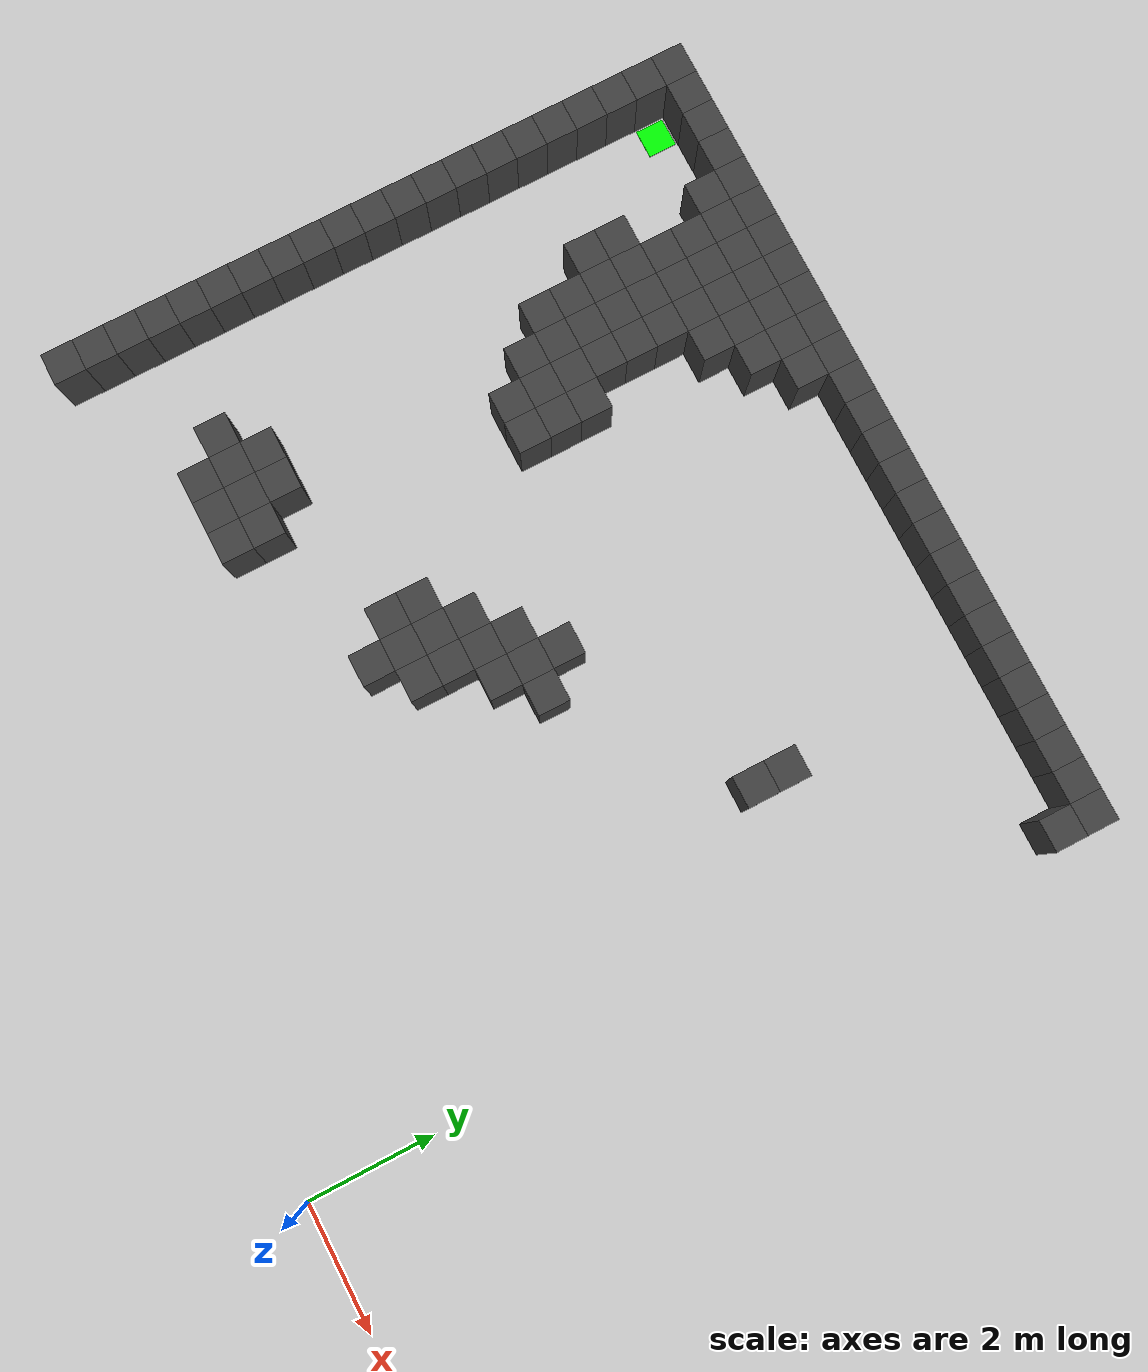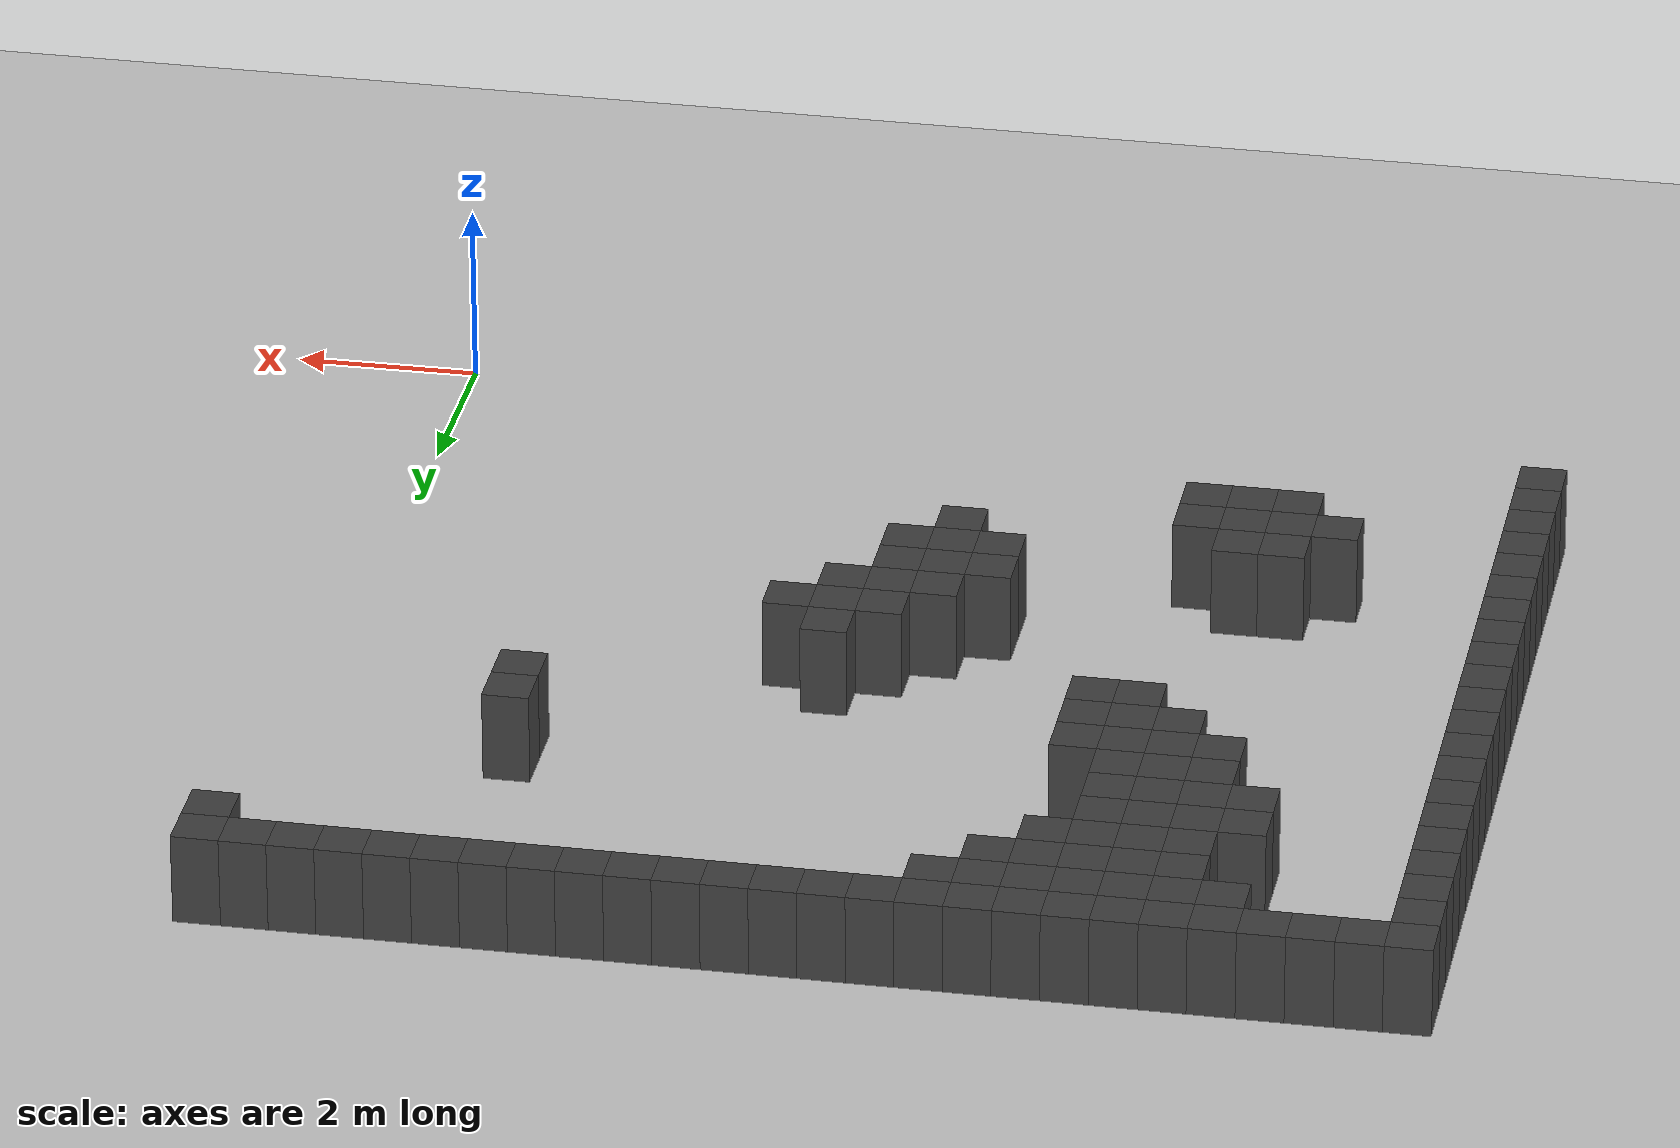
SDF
<sdf version="1.7">
 <world name="map_5937">
  <model name="ground_plane">
   <static>true</static>
   <link name="link">
    <collision name="collision">
     <geometry><plane><normal>0 0 1</normal><size>200 200</size></plane></geometry>
    </collision>
    <visual name="visual">
     <geometry><plane><normal>0 0 1</normal><size>200 200</size></plane></geometry>
     <material><ambient>0.8 0.8 0.8 1</ambient><diffuse>0.8 0.8 0.8 1</diffuse></material>
    </visual>
   </link>
  </model>
  <model name="maze_environment">
   <static>true</static>
   <link name="wall_0">
    <pose>-12.250 12.250 0.500 0 0 0</pose>
    <collision name="col"><geometry><box><size>0.5 0.5 1.0</size></box></geometry></collision>
    <visual name="vis">
     <geometry><box><size>0.5 0.5 1.0</size></box></geometry>
     <material><ambient>0.15 0.15 0.15 1</ambient><diffuse>0.25 0.25 0.25 1</diffuse></material>
    </visual>
   </link>
   <link name="wall_1">
    <pose>-11.750 12.250 0.500 0 0 0</pose>
    <collision name="col"><geometry><box><size>0.5 0.5 1.0</size></box></geometry></collision>
    <visual name="vis">
     <geometry><box><size>0.5 0.5 1.0</size></box></geometry>
     <material><ambient>0.15 0.15 0.15 1</ambient><diffuse>0.25 0.25 0.25 1</diffuse></material>
    </visual>
   </link>
   <link name="wall_2">
    <pose>-11.250 12.250 0.500 0 0 0</pose>
    <collision name="col"><geometry><box><size>0.5 0.5 1.0</size></box></geometry></collision>
    <visual name="vis">
     <geometry><box><size>0.5 0.5 1.0</size></box></geometry>
     <material><ambient>0.15 0.15 0.15 1</ambient><diffuse>0.25 0.25 0.25 1</diffuse></material>
    </visual>
   </link>
   <link name="wall_3">
    <pose>-10.750 12.250 0.500 0 0 0</pose>
    <collision name="col"><geometry><box><size>0.5 0.5 1.0</size></box></geometry></collision>
    <visual name="vis">
     <geometry><box><size>0.5 0.5 1.0</size></box></geometry>
     <material><ambient>0.15 0.15 0.15 1</ambient><diffuse>0.25 0.25 0.25 1</diffuse></material>
    </visual>
   </link>
   <link name="wall_4">
    <pose>-10.250 12.250 0.500 0 0 0</pose>
    <collision name="col"><geometry><box><size>0.5 0.5 1.0</size></box></geometry></collision>
    <visual name="vis">
     <geometry><box><size>0.5 0.5 1.0</size></box></geometry>
     <material><ambient>0.15 0.15 0.15 1</ambient><diffuse>0.25 0.25 0.25 1</diffuse></material>
    </visual>
   </link>
   <link name="wall_5">
    <pose>-9.750 12.250 0.500 0 0 0</pose>
    <collision name="col"><geometry><box><size>0.5 0.5 1.0</size></box></geometry></collision>
    <visual name="vis">
     <geometry><box><size>0.5 0.5 1.0</size></box></geometry>
     <material><ambient>0.15 0.15 0.15 1</ambient><diffuse>0.25 0.25 0.25 1</diffuse></material>
    </visual>
   </link>
   <link name="wall_6">
    <pose>-9.250 12.250 0.500 0 0 0</pose>
    <collision name="col"><geometry><box><size>0.5 0.5 1.0</size></box></geometry></collision>
    <visual name="vis">
     <geometry><box><size>0.5 0.5 1.0</size></box></geometry>
     <material><ambient>0.15 0.15 0.15 1</ambient><diffuse>0.25 0.25 0.25 1</diffuse></material>
    </visual>
   </link>
   <link name="wall_7">
    <pose>-8.750 12.250 0.500 0 0 0</pose>
    <collision name="col"><geometry><box><size>0.5 0.5 1.0</size></box></geometry></collision>
    <visual name="vis">
     <geometry><box><size>0.5 0.5 1.0</size></box></geometry>
     <material><ambient>0.15 0.15 0.15 1</ambient><diffuse>0.25 0.25 0.25 1</diffuse></material>
    </visual>
   </link>
   <link name="wall_8">
    <pose>-8.250 12.250 0.500 0 0 0</pose>
    <collision name="col"><geometry><box><size>0.5 0.5 1.0</size></box></geometry></collision>
    <visual name="vis">
     <geometry><box><size>0.5 0.5 1.0</size></box></geometry>
     <material><ambient>0.15 0.15 0.15 1</ambient><diffuse>0.25 0.25 0.25 1</diffuse></material>
    </visual>
   </link>
   <link name="wall_9">
    <pose>-7.750 12.250 0.500 0 0 0</pose>
    <collision name="col"><geometry><box><size>0.5 0.5 1.0</size></box></geometry></collision>
    <visual name="vis">
     <geometry><box><size>0.5 0.5 1.0</size></box></geometry>
     <material><ambient>0.15 0.15 0.15 1</ambient><diffuse>0.25 0.25 0.25 1</diffuse></material>
    </visual>
   </link>
   <link name="wall_10">
    <pose>-7.250 12.250 0.500 0 0 0</pose>
    <collision name="col"><geometry><box><size>0.5 0.5 1.0</size></box></geometry></collision>
    <visual name="vis">
     <geometry><box><size>0.5 0.5 1.0</size></box></geometry>
     <material><ambient>0.15 0.15 0.15 1</ambient><diffuse>0.25 0.25 0.25 1</diffuse></material>
    </visual>
   </link>
   <link name="wall_11">
    <pose>-6.750 12.250 0.500 0 0 0</pose>
    <collision name="col"><geometry><box><size>0.5 0.5 1.0</size></box></geometry></collision>
    <visual name="vis">
     <geometry><box><size>0.5 0.5 1.0</size></box></geometry>
     <material><ambient>0.15 0.15 0.15 1</ambient><diffuse>0.25 0.25 0.25 1</diffuse></material>
    </visual>
   </link>
   <link name="wall_12">
    <pose>-6.250 12.250 0.500 0 0 0</pose>
    <collision name="col"><geometry><box><size>0.5 0.5 1.0</size></box></geometry></collision>
    <visual name="vis">
     <geometry><box><size>0.5 0.5 1.0</size></box></geometry>
     <material><ambient>0.15 0.15 0.15 1</ambient><diffuse>0.25 0.25 0.25 1</diffuse></material>
    </visual>
   </link>
   <link name="wall_13">
    <pose>-5.750 12.250 0.500 0 0 0</pose>
    <collision name="col"><geometry><box><size>0.5 0.5 1.0</size></box></geometry></collision>
    <visual name="vis">
     <geometry><box><size>0.5 0.5 1.0</size></box></geometry>
     <material><ambient>0.15 0.15 0.15 1</ambient><diffuse>0.25 0.25 0.25 1</diffuse></material>
    </visual>
   </link>
   <link name="wall_14">
    <pose>-5.250 12.250 0.500 0 0 0</pose>
    <collision name="col"><geometry><box><size>0.5 0.5 1.0</size></box></geometry></collision>
    <visual name="vis">
     <geometry><box><size>0.5 0.5 1.0</size></box></geometry>
     <material><ambient>0.15 0.15 0.15 1</ambient><diffuse>0.25 0.25 0.25 1</diffuse></material>
    </visual>
   </link>
   <link name="wall_15">
    <pose>-4.750 12.250 0.500 0 0 0</pose>
    <collision name="col"><geometry><box><size>0.5 0.5 1.0</size></box></geometry></collision>
    <visual name="vis">
     <geometry><box><size>0.5 0.5 1.0</size></box></geometry>
     <material><ambient>0.15 0.15 0.15 1</ambient><diffuse>0.25 0.25 0.25 1</diffuse></material>
    </visual>
   </link>
   <link name="wall_16">
    <pose>-4.250 12.250 0.500 0 0 0</pose>
    <collision name="col"><geometry><box><size>0.5 0.5 1.0</size></box></geometry></collision>
    <visual name="vis">
     <geometry><box><size>0.5 0.5 1.0</size></box></geometry>
     <material><ambient>0.15 0.15 0.15 1</ambient><diffuse>0.25 0.25 0.25 1</diffuse></material>
    </visual>
   </link>
   <link name="wall_17">
    <pose>-3.750 12.250 0.500 0 0 0</pose>
    <collision name="col"><geometry><box><size>0.5 0.5 1.0</size></box></geometry></collision>
    <visual name="vis">
     <geometry><box><size>0.5 0.5 1.0</size></box></geometry>
     <material><ambient>0.15 0.15 0.15 1</ambient><diffuse>0.25 0.25 0.25 1</diffuse></material>
    </visual>
   </link>
   <link name="wall_18">
    <pose>-3.250 12.250 0.500 0 0 0</pose>
    <collision name="col"><geometry><box><size>0.5 0.5 1.0</size></box></geometry></collision>
    <visual name="vis">
     <geometry><box><size>0.5 0.5 1.0</size></box></geometry>
     <material><ambient>0.15 0.15 0.15 1</ambient><diffuse>0.25 0.25 0.25 1</diffuse></material>
    </visual>
   </link>
   <link name="wall_19">
    <pose>-2.750 12.250 0.500 0 0 0</pose>
    <collision name="col"><geometry><box><size>0.5 0.5 1.0</size></box></geometry></collision>
    <visual name="vis">
     <geometry><box><size>0.5 0.5 1.0</size></box></geometry>
     <material><ambient>0.15 0.15 0.15 1</ambient><diffuse>0.25 0.25 0.25 1</diffuse></material>
    </visual>
   </link>
   <link name="wall_20">
    <pose>-2.250 12.250 0.500 0 0 0</pose>
    <collision name="col"><geometry><box><size>0.5 0.5 1.0</size></box></geometry></collision>
    <visual name="vis">
     <geometry><box><size>0.5 0.5 1.0</size></box></geometry>
     <material><ambient>0.15 0.15 0.15 1</ambient><diffuse>0.25 0.25 0.25 1</diffuse></material>
    </visual>
   </link>
   <link name="wall_21">
    <pose>-1.750 12.250 0.500 0 0 0</pose>
    <collision name="col"><geometry><box><size>0.5 0.5 1.0</size></box></geometry></collision>
    <visual name="vis">
     <geometry><box><size>0.5 0.5 1.0</size></box></geometry>
     <material><ambient>0.15 0.15 0.15 1</ambient><diffuse>0.25 0.25 0.25 1</diffuse></material>
    </visual>
   </link>
   <link name="wall_22">
    <pose>-1.250 12.250 0.500 0 0 0</pose>
    <collision name="col"><geometry><box><size>0.5 0.5 1.0</size></box></geometry></collision>
    <visual name="vis">
     <geometry><box><size>0.5 0.5 1.0</size></box></geometry>
     <material><ambient>0.15 0.15 0.15 1</ambient><diffuse>0.25 0.25 0.25 1</diffuse></material>
    </visual>
   </link>
   <link name="wall_23">
    <pose>-0.750 12.250 0.500 0 0 0</pose>
    <collision name="col"><geometry><box><size>0.5 0.5 1.0</size></box></geometry></collision>
    <visual name="vis">
     <geometry><box><size>0.5 0.5 1.0</size></box></geometry>
     <material><ambient>0.15 0.15 0.15 1</ambient><diffuse>0.25 0.25 0.25 1</diffuse></material>
    </visual>
   </link>
   <link name="wall_24">
    <pose>-0.250 12.250 0.500 0 0 0</pose>
    <collision name="col"><geometry><box><size>0.5 0.5 1.0</size></box></geometry></collision>
    <visual name="vis">
     <geometry><box><size>0.5 0.5 1.0</size></box></geometry>
     <material><ambient>0.15 0.15 0.15 1</ambient><diffuse>0.25 0.25 0.25 1</diffuse></material>
    </visual>
   </link>
   <link name="wall_25">
    <pose>0.250 12.250 0.500 0 0 0</pose>
    <collision name="col"><geometry><box><size>0.5 0.5 1.0</size></box></geometry></collision>
    <visual name="vis">
     <geometry><box><size>0.5 0.5 1.0</size></box></geometry>
     <material><ambient>0.15 0.15 0.15 1</ambient><diffuse>0.25 0.25 0.25 1</diffuse></material>
    </visual>
   </link>
   <link name="wall_50">
    <pose>-12.250 11.750 0.500 0 0 0</pose>
    <collision name="col"><geometry><box><size>0.5 0.5 1.0</size></box></geometry></collision>
    <visual name="vis">
     <geometry><box><size>0.5 0.5 1.0</size></box></geometry>
     <material><ambient>0.15 0.15 0.15 1</ambient><diffuse>0.25 0.25 0.25 1</diffuse></material>
    </visual>
   </link>
   <link name="wall_51">
    <pose>-10.250 11.750 0.500 0 0 0</pose>
    <collision name="col"><geometry><box><size>0.5 0.5 1.0</size></box></geometry></collision>
    <visual name="vis">
     <geometry><box><size>0.5 0.5 1.0</size></box></geometry>
     <material><ambient>0.15 0.15 0.15 1</ambient><diffuse>0.25 0.25 0.25 1</diffuse></material>
    </visual>
   </link>
   <link name="wall_52">
    <pose>-9.750 11.750 0.500 0 0 0</pose>
    <collision name="col"><geometry><box><size>0.5 0.5 1.0</size></box></geometry></collision>
    <visual name="vis">
     <geometry><box><size>0.5 0.5 1.0</size></box></geometry>
     <material><ambient>0.15 0.15 0.15 1</ambient><diffuse>0.25 0.25 0.25 1</diffuse></material>
    </visual>
   </link>
   <link name="wall_53">
    <pose>-9.250 11.750 0.500 0 0 0</pose>
    <collision name="col"><geometry><box><size>0.5 0.5 1.0</size></box></geometry></collision>
    <visual name="vis">
     <geometry><box><size>0.5 0.5 1.0</size></box></geometry>
     <material><ambient>0.15 0.15 0.15 1</ambient><diffuse>0.25 0.25 0.25 1</diffuse></material>
    </visual>
   </link>
   <link name="wall_54">
    <pose>-8.750 11.750 0.500 0 0 0</pose>
    <collision name="col"><geometry><box><size>0.5 0.5 1.0</size></box></geometry></collision>
    <visual name="vis">
     <geometry><box><size>0.5 0.5 1.0</size></box></geometry>
     <material><ambient>0.15 0.15 0.15 1</ambient><diffuse>0.25 0.25 0.25 1</diffuse></material>
    </visual>
   </link>
   <link name="wall_55">
    <pose>-8.250 11.750 0.500 0 0 0</pose>
    <collision name="col"><geometry><box><size>0.5 0.5 1.0</size></box></geometry></collision>
    <visual name="vis">
     <geometry><box><size>0.5 0.5 1.0</size></box></geometry>
     <material><ambient>0.15 0.15 0.15 1</ambient><diffuse>0.25 0.25 0.25 1</diffuse></material>
    </visual>
   </link>
   <link name="wall_56">
    <pose>-7.750 11.750 0.500 0 0 0</pose>
    <collision name="col"><geometry><box><size>0.5 0.5 1.0</size></box></geometry></collision>
    <visual name="vis">
     <geometry><box><size>0.5 0.5 1.0</size></box></geometry>
     <material><ambient>0.15 0.15 0.15 1</ambient><diffuse>0.25 0.25 0.25 1</diffuse></material>
    </visual>
   </link>
   <link name="wall_57">
    <pose>-7.250 11.750 0.500 0 0 0</pose>
    <collision name="col"><geometry><box><size>0.5 0.5 1.0</size></box></geometry></collision>
    <visual name="vis">
     <geometry><box><size>0.5 0.5 1.0</size></box></geometry>
     <material><ambient>0.15 0.15 0.15 1</ambient><diffuse>0.25 0.25 0.25 1</diffuse></material>
    </visual>
   </link>
   <link name="wall_58">
    <pose>0.250 11.750 0.500 0 0 0</pose>
    <collision name="col"><geometry><box><size>0.5 0.5 1.0</size></box></geometry></collision>
    <visual name="vis">
     <geometry><box><size>0.5 0.5 1.0</size></box></geometry>
     <material><ambient>0.15 0.15 0.15 1</ambient><diffuse>0.25 0.25 0.25 1</diffuse></material>
    </visual>
   </link>
   <link name="wall_73">
    <pose>-12.250 11.250 0.500 0 0 0</pose>
    <collision name="col"><geometry><box><size>0.5 0.5 1.0</size></box></geometry></collision>
    <visual name="vis">
     <geometry><box><size>0.5 0.5 1.0</size></box></geometry>
     <material><ambient>0.15 0.15 0.15 1</ambient><diffuse>0.25 0.25 0.25 1</diffuse></material>
    </visual>
   </link>
   <link name="wall_74">
    <pose>-9.750 11.250 0.500 0 0 0</pose>
    <collision name="col"><geometry><box><size>0.5 0.5 1.0</size></box></geometry></collision>
    <visual name="vis">
     <geometry><box><size>0.5 0.5 1.0</size></box></geometry>
     <material><ambient>0.15 0.15 0.15 1</ambient><diffuse>0.25 0.25 0.25 1</diffuse></material>
    </visual>
   </link>
   <link name="wall_75">
    <pose>-9.250 11.250 0.500 0 0 0</pose>
    <collision name="col"><geometry><box><size>0.5 0.5 1.0</size></box></geometry></collision>
    <visual name="vis">
     <geometry><box><size>0.5 0.5 1.0</size></box></geometry>
     <material><ambient>0.15 0.15 0.15 1</ambient><diffuse>0.25 0.25 0.25 1</diffuse></material>
    </visual>
   </link>
   <link name="wall_76">
    <pose>-8.750 11.250 0.500 0 0 0</pose>
    <collision name="col"><geometry><box><size>0.5 0.5 1.0</size></box></geometry></collision>
    <visual name="vis">
     <geometry><box><size>0.5 0.5 1.0</size></box></geometry>
     <material><ambient>0.15 0.15 0.15 1</ambient><diffuse>0.25 0.25 0.25 1</diffuse></material>
    </visual>
   </link>
   <link name="wall_77">
    <pose>-8.250 11.250 0.500 0 0 0</pose>
    <collision name="col"><geometry><box><size>0.5 0.5 1.0</size></box></geometry></collision>
    <visual name="vis">
     <geometry><box><size>0.5 0.5 1.0</size></box></geometry>
     <material><ambient>0.15 0.15 0.15 1</ambient><diffuse>0.25 0.25 0.25 1</diffuse></material>
    </visual>
   </link>
   <link name="wall_78">
    <pose>-7.750 11.250 0.500 0 0 0</pose>
    <collision name="col"><geometry><box><size>0.5 0.5 1.0</size></box></geometry></collision>
    <visual name="vis">
     <geometry><box><size>0.5 0.5 1.0</size></box></geometry>
     <material><ambient>0.15 0.15 0.15 1</ambient><diffuse>0.25 0.25 0.25 1</diffuse></material>
    </visual>
   </link>
   <link name="wall_80">
    <pose>-12.250 10.750 0.500 0 0 0</pose>
    <collision name="col"><geometry><box><size>0.5 0.5 1.0</size></box></geometry></collision>
    <visual name="vis">
     <geometry><box><size>0.5 0.5 1.0</size></box></geometry>
     <material><ambient>0.15 0.15 0.15 1</ambient><diffuse>0.25 0.25 0.25 1</diffuse></material>
    </visual>
   </link>
   <link name="wall_81">
    <pose>-9.750 10.750 0.500 0 0 0</pose>
    <collision name="col"><geometry><box><size>0.5 0.5 1.0</size></box></geometry></collision>
    <visual name="vis">
     <geometry><box><size>0.5 0.5 1.0</size></box></geometry>
     <material><ambient>0.15 0.15 0.15 1</ambient><diffuse>0.25 0.25 0.25 1</diffuse></material>
    </visual>
   </link>
   <link name="wall_82">
    <pose>-9.250 10.750 0.500 0 0 0</pose>
    <collision name="col"><geometry><box><size>0.5 0.5 1.0</size></box></geometry></collision>
    <visual name="vis">
     <geometry><box><size>0.5 0.5 1.0</size></box></geometry>
     <material><ambient>0.15 0.15 0.15 1</ambient><diffuse>0.25 0.25 0.25 1</diffuse></material>
    </visual>
   </link>
   <link name="wall_83">
    <pose>-8.750 10.750 0.500 0 0 0</pose>
    <collision name="col"><geometry><box><size>0.5 0.5 1.0</size></box></geometry></collision>
    <visual name="vis">
     <geometry><box><size>0.5 0.5 1.0</size></box></geometry>
     <material><ambient>0.15 0.15 0.15 1</ambient><diffuse>0.25 0.25 0.25 1</diffuse></material>
    </visual>
   </link>
   <link name="wall_84">
    <pose>-8.250 10.750 0.500 0 0 0</pose>
    <collision name="col"><geometry><box><size>0.5 0.5 1.0</size></box></geometry></collision>
    <visual name="vis">
     <geometry><box><size>0.5 0.5 1.0</size></box></geometry>
     <material><ambient>0.15 0.15 0.15 1</ambient><diffuse>0.25 0.25 0.25 1</diffuse></material>
    </visual>
   </link>
   <link name="wall_86">
    <pose>-12.250 10.250 0.500 0 0 0</pose>
    <collision name="col"><geometry><box><size>0.5 0.5 1.0</size></box></geometry></collision>
    <visual name="vis">
     <geometry><box><size>0.5 0.5 1.0</size></box></geometry>
     <material><ambient>0.15 0.15 0.15 1</ambient><diffuse>0.25 0.25 0.25 1</diffuse></material>
    </visual>
   </link>
   <link name="wall_87">
    <pose>-10.250 10.250 0.500 0 0 0</pose>
    <collision name="col"><geometry><box><size>0.5 0.5 1.0</size></box></geometry></collision>
    <visual name="vis">
     <geometry><box><size>0.5 0.5 1.0</size></box></geometry>
     <material><ambient>0.15 0.15 0.15 1</ambient><diffuse>0.25 0.25 0.25 1</diffuse></material>
    </visual>
   </link>
   <link name="wall_88">
    <pose>-9.750 10.250 0.500 0 0 0</pose>
    <collision name="col"><geometry><box><size>0.5 0.5 1.0</size></box></geometry></collision>
    <visual name="vis">
     <geometry><box><size>0.5 0.5 1.0</size></box></geometry>
     <material><ambient>0.15 0.15 0.15 1</ambient><diffuse>0.25 0.25 0.25 1</diffuse></material>
    </visual>
   </link>
   <link name="wall_89">
    <pose>-9.250 10.250 0.500 0 0 0</pose>
    <collision name="col"><geometry><box><size>0.5 0.5 1.0</size></box></geometry></collision>
    <visual name="vis">
     <geometry><box><size>0.5 0.5 1.0</size></box></geometry>
     <material><ambient>0.15 0.15 0.15 1</ambient><diffuse>0.25 0.25 0.25 1</diffuse></material>
    </visual>
   </link>
   <link name="wall_90">
    <pose>-8.750 10.250 0.500 0 0 0</pose>
    <collision name="col"><geometry><box><size>0.5 0.5 1.0</size></box></geometry></collision>
    <visual name="vis">
     <geometry><box><size>0.5 0.5 1.0</size></box></geometry>
     <material><ambient>0.15 0.15 0.15 1</ambient><diffuse>0.25 0.25 0.25 1</diffuse></material>
    </visual>
   </link>
   <link name="wall_92">
    <pose>-12.250 9.750 0.500 0 0 0</pose>
    <collision name="col"><geometry><box><size>0.5 0.5 1.0</size></box></geometry></collision>
    <visual name="vis">
     <geometry><box><size>0.5 0.5 1.0</size></box></geometry>
     <material><ambient>0.15 0.15 0.15 1</ambient><diffuse>0.25 0.25 0.25 1</diffuse></material>
    </visual>
   </link>
   <link name="wall_93">
    <pose>-10.250 9.750 0.500 0 0 0</pose>
    <collision name="col"><geometry><box><size>0.5 0.5 1.0</size></box></geometry></collision>
    <visual name="vis">
     <geometry><box><size>0.5 0.5 1.0</size></box></geometry>
     <material><ambient>0.15 0.15 0.15 1</ambient><diffuse>0.25 0.25 0.25 1</diffuse></material>
    </visual>
   </link>
   <link name="wall_94">
    <pose>-9.750 9.750 0.500 0 0 0</pose>
    <collision name="col"><geometry><box><size>0.5 0.5 1.0</size></box></geometry></collision>
    <visual name="vis">
     <geometry><box><size>0.5 0.5 1.0</size></box></geometry>
     <material><ambient>0.15 0.15 0.15 1</ambient><diffuse>0.25 0.25 0.25 1</diffuse></material>
    </visual>
   </link>
   <link name="wall_95">
    <pose>-9.250 9.750 0.500 0 0 0</pose>
    <collision name="col"><geometry><box><size>0.5 0.5 1.0</size></box></geometry></collision>
    <visual name="vis">
     <geometry><box><size>0.5 0.5 1.0</size></box></geometry>
     <material><ambient>0.15 0.15 0.15 1</ambient><diffuse>0.25 0.25 0.25 1</diffuse></material>
    </visual>
   </link>
   <link name="wall_96">
    <pose>-8.750 9.750 0.500 0 0 0</pose>
    <collision name="col"><geometry><box><size>0.5 0.5 1.0</size></box></geometry></collision>
    <visual name="vis">
     <geometry><box><size>0.5 0.5 1.0</size></box></geometry>
     <material><ambient>0.15 0.15 0.15 1</ambient><diffuse>0.25 0.25 0.25 1</diffuse></material>
    </visual>
   </link>
   <link name="wall_98">
    <pose>-12.250 9.250 0.500 0 0 0</pose>
    <collision name="col"><geometry><box><size>0.5 0.5 1.0</size></box></geometry></collision>
    <visual name="vis">
     <geometry><box><size>0.5 0.5 1.0</size></box></geometry>
     <material><ambient>0.15 0.15 0.15 1</ambient><diffuse>0.25 0.25 0.25 1</diffuse></material>
    </visual>
   </link>
   <link name="wall_99">
    <pose>-9.750 9.250 0.500 0 0 0</pose>
    <collision name="col"><geometry><box><size>0.5 0.5 1.0</size></box></geometry></collision>
    <visual name="vis">
     <geometry><box><size>0.5 0.5 1.0</size></box></geometry>
     <material><ambient>0.15 0.15 0.15 1</ambient><diffuse>0.25 0.25 0.25 1</diffuse></material>
    </visual>
   </link>
   <link name="wall_100">
    <pose>-9.250 9.250 0.500 0 0 0</pose>
    <collision name="col"><geometry><box><size>0.5 0.5 1.0</size></box></geometry></collision>
    <visual name="vis">
     <geometry><box><size>0.5 0.5 1.0</size></box></geometry>
     <material><ambient>0.15 0.15 0.15 1</ambient><diffuse>0.25 0.25 0.25 1</diffuse></material>
    </visual>
   </link>
   <link name="wall_101">
    <pose>-8.750 9.250 0.500 0 0 0</pose>
    <collision name="col"><geometry><box><size>0.5 0.5 1.0</size></box></geometry></collision>
    <visual name="vis">
     <geometry><box><size>0.5 0.5 1.0</size></box></geometry>
     <material><ambient>0.15 0.15 0.15 1</ambient><diffuse>0.25 0.25 0.25 1</diffuse></material>
    </visual>
   </link>
   <link name="wall_103">
    <pose>-12.250 8.750 0.500 0 0 0</pose>
    <collision name="col"><geometry><box><size>0.5 0.5 1.0</size></box></geometry></collision>
    <visual name="vis">
     <geometry><box><size>0.5 0.5 1.0</size></box></geometry>
     <material><ambient>0.15 0.15 0.15 1</ambient><diffuse>0.25 0.25 0.25 1</diffuse></material>
    </visual>
   </link>
   <link name="wall_104">
    <pose>-9.750 8.750 0.500 0 0 0</pose>
    <collision name="col"><geometry><box><size>0.5 0.5 1.0</size></box></geometry></collision>
    <visual name="vis">
     <geometry><box><size>0.5 0.5 1.0</size></box></geometry>
     <material><ambient>0.15 0.15 0.15 1</ambient><diffuse>0.25 0.25 0.25 1</diffuse></material>
    </visual>
   </link>
   <link name="wall_105">
    <pose>-9.250 8.750 0.500 0 0 0</pose>
    <collision name="col"><geometry><box><size>0.5 0.5 1.0</size></box></geometry></collision>
    <visual name="vis">
     <geometry><box><size>0.5 0.5 1.0</size></box></geometry>
     <material><ambient>0.15 0.15 0.15 1</ambient><diffuse>0.25 0.25 0.25 1</diffuse></material>
    </visual>
   </link>
   <link name="wall_106">
    <pose>-8.750 8.750 0.500 0 0 0</pose>
    <collision name="col"><geometry><box><size>0.5 0.5 1.0</size></box></geometry></collision>
    <visual name="vis">
     <geometry><box><size>0.5 0.5 1.0</size></box></geometry>
     <material><ambient>0.15 0.15 0.15 1</ambient><diffuse>0.25 0.25 0.25 1</diffuse></material>
    </visual>
   </link>
   <link name="wall_107">
    <pose>-8.250 8.750 0.500 0 0 0</pose>
    <collision name="col"><geometry><box><size>0.5 0.5 1.0</size></box></geometry></collision>
    <visual name="vis">
     <geometry><box><size>0.5 0.5 1.0</size></box></geometry>
     <material><ambient>0.15 0.15 0.15 1</ambient><diffuse>0.25 0.25 0.25 1</diffuse></material>
    </visual>
   </link>
   <link name="wall_108">
    <pose>-2.250 8.750 0.500 0 0 0</pose>
    <collision name="col"><geometry><box><size>0.5 0.5 1.0</size></box></geometry></collision>
    <visual name="vis">
     <geometry><box><size>0.5 0.5 1.0</size></box></geometry>
     <material><ambient>0.15 0.15 0.15 1</ambient><diffuse>0.25 0.25 0.25 1</diffuse></material>
    </visual>
   </link>
   <link name="wall_110">
    <pose>-12.250 8.250 0.500 0 0 0</pose>
    <collision name="col"><geometry><box><size>0.5 0.5 1.0</size></box></geometry></collision>
    <visual name="vis">
     <geometry><box><size>0.5 0.5 1.0</size></box></geometry>
     <material><ambient>0.15 0.15 0.15 1</ambient><diffuse>0.25 0.25 0.25 1</diffuse></material>
    </visual>
   </link>
   <link name="wall_111">
    <pose>-9.250 8.250 0.500 0 0 0</pose>
    <collision name="col"><geometry><box><size>0.5 0.5 1.0</size></box></geometry></collision>
    <visual name="vis">
     <geometry><box><size>0.5 0.5 1.0</size></box></geometry>
     <material><ambient>0.15 0.15 0.15 1</ambient><diffuse>0.25 0.25 0.25 1</diffuse></material>
    </visual>
   </link>
   <link name="wall_112">
    <pose>-8.750 8.250 0.500 0 0 0</pose>
    <collision name="col"><geometry><box><size>0.5 0.5 1.0</size></box></geometry></collision>
    <visual name="vis">
     <geometry><box><size>0.5 0.5 1.0</size></box></geometry>
     <material><ambient>0.15 0.15 0.15 1</ambient><diffuse>0.25 0.25 0.25 1</diffuse></material>
    </visual>
   </link>
   <link name="wall_113">
    <pose>-8.250 8.250 0.500 0 0 0</pose>
    <collision name="col"><geometry><box><size>0.5 0.5 1.0</size></box></geometry></collision>
    <visual name="vis">
     <geometry><box><size>0.5 0.5 1.0</size></box></geometry>
     <material><ambient>0.15 0.15 0.15 1</ambient><diffuse>0.25 0.25 0.25 1</diffuse></material>
    </visual>
   </link>
   <link name="wall_114">
    <pose>-2.250 8.250 0.500 0 0 0</pose>
    <collision name="col"><geometry><box><size>0.5 0.5 1.0</size></box></geometry></collision>
    <visual name="vis">
     <geometry><box><size>0.5 0.5 1.0</size></box></geometry>
     <material><ambient>0.15 0.15 0.15 1</ambient><diffuse>0.25 0.25 0.25 1</diffuse></material>
    </visual>
   </link>
   <link name="wall_116">
    <pose>-12.250 7.750 0.500 0 0 0</pose>
    <collision name="col"><geometry><box><size>0.5 0.5 1.0</size></box></geometry></collision>
    <visual name="vis">
     <geometry><box><size>0.5 0.5 1.0</size></box></geometry>
     <material><ambient>0.15 0.15 0.15 1</ambient><diffuse>0.25 0.25 0.25 1</diffuse></material>
    </visual>
   </link>
   <link name="wall_117">
    <pose>-8.750 7.750 0.500 0 0 0</pose>
    <collision name="col"><geometry><box><size>0.5 0.5 1.0</size></box></geometry></collision>
    <visual name="vis">
     <geometry><box><size>0.5 0.5 1.0</size></box></geometry>
     <material><ambient>0.15 0.15 0.15 1</ambient><diffuse>0.25 0.25 0.25 1</diffuse></material>
    </visual>
   </link>
   <link name="wall_118">
    <pose>-8.250 7.750 0.500 0 0 0</pose>
    <collision name="col"><geometry><box><size>0.5 0.5 1.0</size></box></geometry></collision>
    <visual name="vis">
     <geometry><box><size>0.5 0.5 1.0</size></box></geometry>
     <material><ambient>0.15 0.15 0.15 1</ambient><diffuse>0.25 0.25 0.25 1</diffuse></material>
    </visual>
   </link>
   <link name="wall_122">
    <pose>-12.250 7.250 0.500 0 0 0</pose>
    <collision name="col"><geometry><box><size>0.5 0.5 1.0</size></box></geometry></collision>
    <visual name="vis">
     <geometry><box><size>0.5 0.5 1.0</size></box></geometry>
     <material><ambient>0.15 0.15 0.15 1</ambient><diffuse>0.25 0.25 0.25 1</diffuse></material>
    </visual>
   </link>
   <link name="wall_125">
    <pose>-12.250 6.750 0.500 0 0 0</pose>
    <collision name="col"><geometry><box><size>0.5 0.5 1.0</size></box></geometry></collision>
    <visual name="vis">
     <geometry><box><size>0.5 0.5 1.0</size></box></geometry>
     <material><ambient>0.15 0.15 0.15 1</ambient><diffuse>0.25 0.25 0.25 1</diffuse></material>
    </visual>
   </link>
   <link name="wall_126">
    <pose>-5.250 6.750 0.500 0 0 0</pose>
    <collision name="col"><geometry><box><size>0.5 0.5 1.0</size></box></geometry></collision>
    <visual name="vis">
     <geometry><box><size>0.5 0.5 1.0</size></box></geometry>
     <material><ambient>0.15 0.15 0.15 1</ambient><diffuse>0.25 0.25 0.25 1</diffuse></material>
    </visual>
   </link>
   <link name="wall_129">
    <pose>-12.250 6.250 0.500 0 0 0</pose>
    <collision name="col"><geometry><box><size>0.5 0.5 1.0</size></box></geometry></collision>
    <visual name="vis">
     <geometry><box><size>0.5 0.5 1.0</size></box></geometry>
     <material><ambient>0.15 0.15 0.15 1</ambient><diffuse>0.25 0.25 0.25 1</diffuse></material>
    </visual>
   </link>
   <link name="wall_130">
    <pose>-5.750 6.250 0.500 0 0 0</pose>
    <collision name="col"><geometry><box><size>0.5 0.5 1.0</size></box></geometry></collision>
    <visual name="vis">
     <geometry><box><size>0.5 0.5 1.0</size></box></geometry>
     <material><ambient>0.15 0.15 0.15 1</ambient><diffuse>0.25 0.25 0.25 1</diffuse></material>
    </visual>
   </link>
   <link name="wall_131">
    <pose>-5.250 6.250 0.500 0 0 0</pose>
    <collision name="col"><geometry><box><size>0.5 0.5 1.0</size></box></geometry></collision>
    <visual name="vis">
     <geometry><box><size>0.5 0.5 1.0</size></box></geometry>
     <material><ambient>0.15 0.15 0.15 1</ambient><diffuse>0.25 0.25 0.25 1</diffuse></material>
    </visual>
   </link>
   <link name="wall_132">
    <pose>-4.750 6.250 0.500 0 0 0</pose>
    <collision name="col"><geometry><box><size>0.5 0.5 1.0</size></box></geometry></collision>
    <visual name="vis">
     <geometry><box><size>0.5 0.5 1.0</size></box></geometry>
     <material><ambient>0.15 0.15 0.15 1</ambient><diffuse>0.25 0.25 0.25 1</diffuse></material>
    </visual>
   </link>
   <link name="wall_136">
    <pose>-12.250 5.750 0.500 0 0 0</pose>
    <collision name="col"><geometry><box><size>0.5 0.5 1.0</size></box></geometry></collision>
    <visual name="vis">
     <geometry><box><size>0.5 0.5 1.0</size></box></geometry>
     <material><ambient>0.15 0.15 0.15 1</ambient><diffuse>0.25 0.25 0.25 1</diffuse></material>
    </visual>
   </link>
   <link name="wall_137">
    <pose>-6.250 5.750 0.500 0 0 0</pose>
    <collision name="col"><geometry><box><size>0.5 0.5 1.0</size></box></geometry></collision>
    <visual name="vis">
     <geometry><box><size>0.5 0.5 1.0</size></box></geometry>
     <material><ambient>0.15 0.15 0.15 1</ambient><diffuse>0.25 0.25 0.25 1</diffuse></material>
    </visual>
   </link>
   <link name="wall_138">
    <pose>-5.750 5.750 0.500 0 0 0</pose>
    <collision name="col"><geometry><box><size>0.5 0.5 1.0</size></box></geometry></collision>
    <visual name="vis">
     <geometry><box><size>0.5 0.5 1.0</size></box></geometry>
     <material><ambient>0.15 0.15 0.15 1</ambient><diffuse>0.25 0.25 0.25 1</diffuse></material>
    </visual>
   </link>
   <link name="wall_139">
    <pose>-5.250 5.750 0.500 0 0 0</pose>
    <collision name="col"><geometry><box><size>0.5 0.5 1.0</size></box></geometry></collision>
    <visual name="vis">
     <geometry><box><size>0.5 0.5 1.0</size></box></geometry>
     <material><ambient>0.15 0.15 0.15 1</ambient><diffuse>0.25 0.25 0.25 1</diffuse></material>
    </visual>
   </link>
   <link name="wall_143">
    <pose>-12.250 5.250 0.500 0 0 0</pose>
    <collision name="col"><geometry><box><size>0.5 0.5 1.0</size></box></geometry></collision>
    <visual name="vis">
     <geometry><box><size>0.5 0.5 1.0</size></box></geometry>
     <material><ambient>0.15 0.15 0.15 1</ambient><diffuse>0.25 0.25 0.25 1</diffuse></material>
    </visual>
   </link>
   <link name="wall_144">
    <pose>-6.750 5.250 0.500 0 0 0</pose>
    <collision name="col"><geometry><box><size>0.5 0.5 1.0</size></box></geometry></collision>
    <visual name="vis">
     <geometry><box><size>0.5 0.5 1.0</size></box></geometry>
     <material><ambient>0.15 0.15 0.15 1</ambient><diffuse>0.25 0.25 0.25 1</diffuse></material>
    </visual>
   </link>
   <link name="wall_145">
    <pose>-6.250 5.250 0.500 0 0 0</pose>
    <collision name="col"><geometry><box><size>0.5 0.5 1.0</size></box></geometry></collision>
    <visual name="vis">
     <geometry><box><size>0.5 0.5 1.0</size></box></geometry>
     <material><ambient>0.15 0.15 0.15 1</ambient><diffuse>0.25 0.25 0.25 1</diffuse></material>
    </visual>
   </link>
   <link name="wall_146">
    <pose>-5.750 5.250 0.500 0 0 0</pose>
    <collision name="col"><geometry><box><size>0.5 0.5 1.0</size></box></geometry></collision>
    <visual name="vis">
     <geometry><box><size>0.5 0.5 1.0</size></box></geometry>
     <material><ambient>0.15 0.15 0.15 1</ambient><diffuse>0.25 0.25 0.25 1</diffuse></material>
    </visual>
   </link>
   <link name="wall_150">
    <pose>-12.250 4.750 0.500 0 0 0</pose>
    <collision name="col"><geometry><box><size>0.5 0.5 1.0</size></box></geometry></collision>
    <visual name="vis">
     <geometry><box><size>0.5 0.5 1.0</size></box></geometry>
     <material><ambient>0.15 0.15 0.15 1</ambient><diffuse>0.25 0.25 0.25 1</diffuse></material>
    </visual>
   </link>
   <link name="wall_151">
    <pose>-6.750 4.750 0.500 0 0 0</pose>
    <collision name="col"><geometry><box><size>0.5 0.5 1.0</size></box></geometry></collision>
    <visual name="vis">
     <geometry><box><size>0.5 0.5 1.0</size></box></geometry>
     <material><ambient>0.15 0.15 0.15 1</ambient><diffuse>0.25 0.25 0.25 1</diffuse></material>
    </visual>
   </link>
   <link name="wall_152">
    <pose>-6.250 4.750 0.500 0 0 0</pose>
    <collision name="col"><geometry><box><size>0.5 0.5 1.0</size></box></geometry></collision>
    <visual name="vis">
     <geometry><box><size>0.5 0.5 1.0</size></box></geometry>
     <material><ambient>0.15 0.15 0.15 1</ambient><diffuse>0.25 0.25 0.25 1</diffuse></material>
    </visual>
   </link>
   <link name="wall_153">
    <pose>-5.750 4.750 0.500 0 0 0</pose>
    <collision name="col"><geometry><box><size>0.5 0.5 1.0</size></box></geometry></collision>
    <visual name="vis">
     <geometry><box><size>0.5 0.5 1.0</size></box></geometry>
     <material><ambient>0.15 0.15 0.15 1</ambient><diffuse>0.25 0.25 0.25 1</diffuse></material>
    </visual>
   </link>
   <link name="wall_156">
    <pose>-12.250 4.250 0.500 0 0 0</pose>
    <collision name="col"><geometry><box><size>0.5 0.5 1.0</size></box></geometry></collision>
    <visual name="vis">
     <geometry><box><size>0.5 0.5 1.0</size></box></geometry>
     <material><ambient>0.15 0.15 0.15 1</ambient><diffuse>0.25 0.25 0.25 1</diffuse></material>
    </visual>
   </link>
   <link name="wall_157">
    <pose>-9.750 4.250 0.500 0 0 0</pose>
    <collision name="col"><geometry><box><size>0.5 0.5 1.0</size></box></geometry></collision>
    <visual name="vis">
     <geometry><box><size>0.5 0.5 1.0</size></box></geometry>
     <material><ambient>0.15 0.15 0.15 1</ambient><diffuse>0.25 0.25 0.25 1</diffuse></material>
    </visual>
   </link>
   <link name="wall_158">
    <pose>-9.250 4.250 0.500 0 0 0</pose>
    <collision name="col"><geometry><box><size>0.5 0.5 1.0</size></box></geometry></collision>
    <visual name="vis">
     <geometry><box><size>0.5 0.5 1.0</size></box></geometry>
     <material><ambient>0.15 0.15 0.15 1</ambient><diffuse>0.25 0.25 0.25 1</diffuse></material>
    </visual>
   </link>
   <link name="wall_159">
    <pose>-6.250 4.250 0.500 0 0 0</pose>
    <collision name="col"><geometry><box><size>0.5 0.5 1.0</size></box></geometry></collision>
    <visual name="vis">
     <geometry><box><size>0.5 0.5 1.0</size></box></geometry>
     <material><ambient>0.15 0.15 0.15 1</ambient><diffuse>0.25 0.25 0.25 1</diffuse></material>
    </visual>
   </link>
   <link name="wall_163">
    <pose>-12.250 3.750 0.500 0 0 0</pose>
    <collision name="col"><geometry><box><size>0.5 0.5 1.0</size></box></geometry></collision>
    <visual name="vis">
     <geometry><box><size>0.5 0.5 1.0</size></box></geometry>
     <material><ambient>0.15 0.15 0.15 1</ambient><diffuse>0.25 0.25 0.25 1</diffuse></material>
    </visual>
   </link>
   <link name="wall_164">
    <pose>-10.250 3.750 0.500 0 0 0</pose>
    <collision name="col"><geometry><box><size>0.5 0.5 1.0</size></box></geometry></collision>
    <visual name="vis">
     <geometry><box><size>0.5 0.5 1.0</size></box></geometry>
     <material><ambient>0.15 0.15 0.15 1</ambient><diffuse>0.25 0.25 0.25 1</diffuse></material>
    </visual>
   </link>
   <link name="wall_165">
    <pose>-9.750 3.750 0.500 0 0 0</pose>
    <collision name="col"><geometry><box><size>0.5 0.5 1.0</size></box></geometry></collision>
    <visual name="vis">
     <geometry><box><size>0.5 0.5 1.0</size></box></geometry>
     <material><ambient>0.15 0.15 0.15 1</ambient><diffuse>0.25 0.25 0.25 1</diffuse></material>
    </visual>
   </link>
   <link name="wall_166">
    <pose>-9.250 3.750 0.500 0 0 0</pose>
    <collision name="col"><geometry><box><size>0.5 0.5 1.0</size></box></geometry></collision>
    <visual name="vis">
     <geometry><box><size>0.5 0.5 1.0</size></box></geometry>
     <material><ambient>0.15 0.15 0.15 1</ambient><diffuse>0.25 0.25 0.25 1</diffuse></material>
    </visual>
   </link>
   <link name="wall_167">
    <pose>-8.750 3.750 0.500 0 0 0</pose>
    <collision name="col"><geometry><box><size>0.5 0.5 1.0</size></box></geometry></collision>
    <visual name="vis">
     <geometry><box><size>0.5 0.5 1.0</size></box></geometry>
     <material><ambient>0.15 0.15 0.15 1</ambient><diffuse>0.25 0.25 0.25 1</diffuse></material>
    </visual>
   </link>
   <link name="wall_174">
    <pose>-12.250 3.250 0.500 0 0 0</pose>
    <collision name="col"><geometry><box><size>0.5 0.5 1.0</size></box></geometry></collision>
    <visual name="vis">
     <geometry><box><size>0.5 0.5 1.0</size></box></geometry>
     <material><ambient>0.15 0.15 0.15 1</ambient><diffuse>0.25 0.25 0.25 1</diffuse></material>
    </visual>
   </link>
   <link name="wall_175">
    <pose>-9.750 3.250 0.500 0 0 0</pose>
    <collision name="col"><geometry><box><size>0.5 0.5 1.0</size></box></geometry></collision>
    <visual name="vis">
     <geometry><box><size>0.5 0.5 1.0</size></box></geometry>
     <material><ambient>0.15 0.15 0.15 1</ambient><diffuse>0.25 0.25 0.25 1</diffuse></material>
    </visual>
   </link>
   <link name="wall_176">
    <pose>-9.250 3.250 0.500 0 0 0</pose>
    <collision name="col"><geometry><box><size>0.5 0.5 1.0</size></box></geometry></collision>
    <visual name="vis">
     <geometry><box><size>0.5 0.5 1.0</size></box></geometry>
     <material><ambient>0.15 0.15 0.15 1</ambient><diffuse>0.25 0.25 0.25 1</diffuse></material>
    </visual>
   </link>
   <link name="wall_177">
    <pose>-8.750 3.250 0.500 0 0 0</pose>
    <collision name="col"><geometry><box><size>0.5 0.5 1.0</size></box></geometry></collision>
    <visual name="vis">
     <geometry><box><size>0.5 0.5 1.0</size></box></geometry>
     <material><ambient>0.15 0.15 0.15 1</ambient><diffuse>0.25 0.25 0.25 1</diffuse></material>
    </visual>
   </link>
   <link name="wall_183">
    <pose>-12.250 2.750 0.500 0 0 0</pose>
    <collision name="col"><geometry><box><size>0.5 0.5 1.0</size></box></geometry></collision>
    <visual name="vis">
     <geometry><box><size>0.5 0.5 1.0</size></box></geometry>
     <material><ambient>0.15 0.15 0.15 1</ambient><diffuse>0.25 0.25 0.25 1</diffuse></material>
    </visual>
   </link>
   <link name="wall_188">
    <pose>-12.250 2.250 0.500 0 0 0</pose>
    <collision name="col"><geometry><box><size>0.5 0.5 1.0</size></box></geometry></collision>
    <visual name="vis">
     <geometry><box><size>0.5 0.5 1.0</size></box></geometry>
     <material><ambient>0.15 0.15 0.15 1</ambient><diffuse>0.25 0.25 0.25 1</diffuse></material>
    </visual>
   </link>
   <link name="start_zone">
    <pose>-11.750 11.750 0.005 0 0 0</pose>
    <visual name="vis">
     <geometry><box><size>0.45 0.45 0.01</size></box></geometry>
     <material>
      <ambient>0.0 1.0 0.0 1</ambient>
      <diffuse>0.0 1.0 0.0 1</diffuse>
      <emissive>0.00 0.60 0.00 1</emissive>
     </material>
    </visual>
   </link>
  </model>
 </world>
</sdf>
